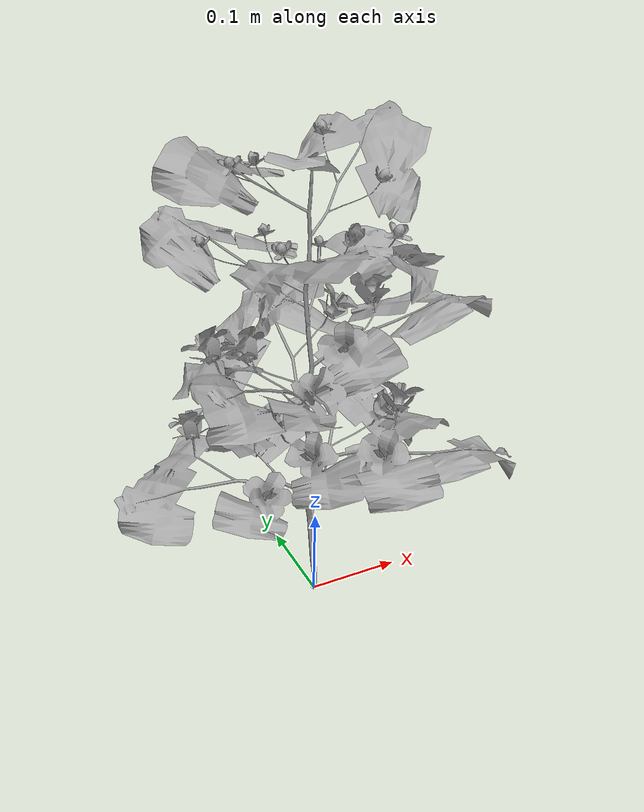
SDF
<?xml version="1.0" ?>
<sdf version="1.5">
	<model name="cotton6">
      <pose>0 0 0  0 0 0</pose>
      <static>true</static>
      <link name="body">
		<collision name="collision">
		    <geometry>
		      <mesh>
		        <uri>model://cotton6/cotton6.dae</uri>
		      </mesh>
		    </geometry>
      	</collision>
        <visual name="visual">
          <geometry>
            <mesh><uri>model://cotton6/cotton6.dae</uri></mesh>
          </geometry>
        </visual>
      </link>
    </model>
</sdf>
